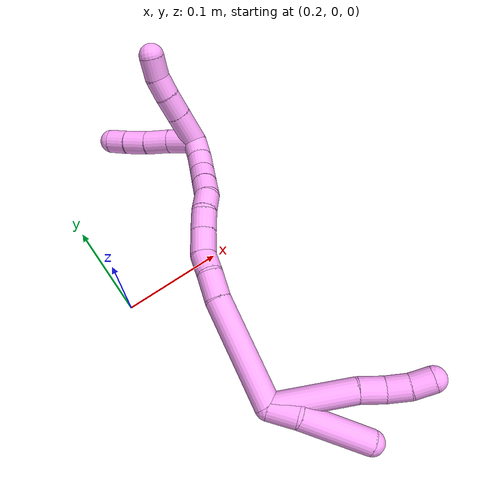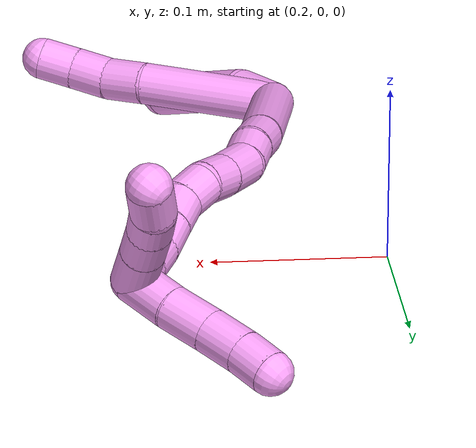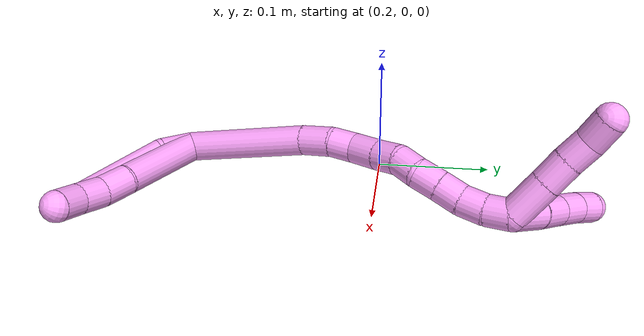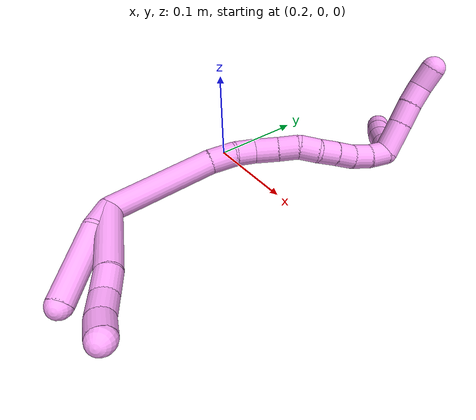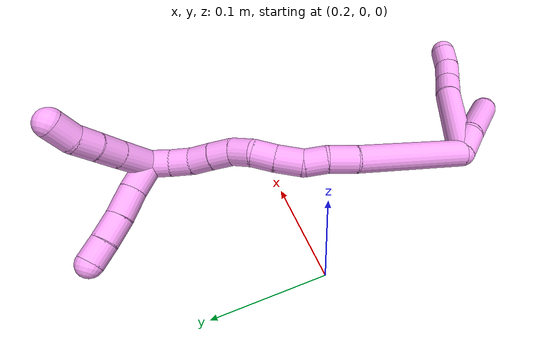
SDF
<sdf version="1.7">
 <world name="default">
  <model name="4">
   <static>0</static>
   <link name="4">
    <collision name="collision-cylinder-e_1_2_8">
     <pose>-0.01701 0.007553 -0.03589 -2.93416 -0.434267 2.25989</pose>
     <geometry><cylinder><radius>0.0125</radius><length>0.080858</length></cylinder></geometry>
     <surface>
      <friction><ode><mu>1.16</mu><mu2>1.16</mu2><slip1>0</slip1><slip2>0</slip2></ode></friction>
      <contact><ode><kp>1e+06</kp><kd>1</kd><max_vel>0</max_vel><min_depth>0.001</min_depth></ode></contact>
     </surface>
    </collision>
    <visual name="visual-cylinder-e_1_2_8">
     <pose>-0.01701 0.007553 -0.03589 -2.93416 -0.434267 2.25989</pose>
     <geometry><cylinder><radius>0.0125</radius><length>0.080858</length></cylinder></geometry>
     <material><ambient>1 0.65098 0.996078 1</ambient></material>
    </visual>
    <collision name="collision-cylinder-e_2_8_9">
     <pose>-0.039844 0.015535 -0.082773 -3.10262 -0.486855 2.98498</pose>
     <geometry><cylinder><radius>0.0125</radius><length>0.024895</length></cylinder></geometry>
     <surface>
      <friction><ode><mu>1.16</mu><mu2>1.16</mu2><slip1>0</slip1><slip2>0</slip2></ode></friction>
      <contact><ode><kp>1e+06</kp><kd>1</kd><max_vel>0</max_vel><min_depth>0.001</min_depth></ode></contact>
     </surface>
    </collision>
    <visual name="visual-cylinder-e_2_8_9">
     <pose>-0.039844 0.015535 -0.082773 -3.10262 -0.486855 2.98498</pose>
     <geometry><cylinder><radius>0.0125</radius><length>0.024895</length></cylinder></geometry>
     <material><ambient>1 0.65098 0.996078 1</ambient></material>
    </visual>
    <collision name="collision-cylinder-e_3_9_10">
     <pose>-0.049157 0.017312 -0.104506 -3.0167 -0.311801 2.38432</pose>
     <geometry><cylinder><radius>0.0125</radius><length>0.022745</length></cylinder></geometry>
     <surface>
      <friction><ode><mu>1.16</mu><mu2>1.16</mu2><slip1>0</slip1><slip2>0</slip2></ode></friction>
      <contact><ode><kp>1e+06</kp><kd>1</kd><max_vel>0</max_vel><min_depth>0.001</min_depth></ode></contact>
     </surface>
    </collision>
    <visual name="visual-cylinder-e_3_9_10">
     <pose>-0.049157 0.017312 -0.104506 -3.0167 -0.311801 2.38432</pose>
     <geometry><cylinder><radius>0.0125</radius><length>0.022745</length></cylinder></geometry>
     <material><ambient>1 0.65098 0.996078 1</ambient></material>
    </visual>
    <collision name="collision-cylinder-e_4_10_6">
     <pose>-0.055369 0.021981 -0.125102 -2.81664 -0.256133 1.33177</pose>
     <geometry><cylinder><radius>0.0125</radius><length>0.021502</length></cylinder></geometry>
     <surface>
      <friction><ode><mu>1.16</mu><mu2>1.16</mu2><slip1>0</slip1><slip2>0</slip2></ode></friction>
      <contact><ode><kp>1e+06</kp><kd>1</kd><max_vel>0</max_vel><min_depth>0.001</min_depth></ode></contact>
     </surface>
    </collision>
    <visual name="visual-cylinder-e_4_10_6">
     <pose>-0.055369 0.021981 -0.125102 -2.81664 -0.256133 1.33177</pose>
     <geometry><cylinder><radius>0.0125</radius><length>0.021502</length></cylinder></geometry>
     <material><ambient>1 0.65098 0.996078 1</ambient></material>
    </visual>
    <collision name="collision-cylinder-e_1_2_11">
     <pose>-0.00447 -0.003666 -0.01263 2.85912 -0.327659 -1.72094</pose>
     <geometry><cylinder><radius>0.0125</radius><length>0.027781</length></cylinder></geometry>
     <surface>
      <friction><ode><mu>1.16</mu><mu2>1.16</mu2><slip1>0</slip1><slip2>0</slip2></ode></friction>
      <contact><ode><kp>1e+06</kp><kd>1</kd><max_vel>0</max_vel><min_depth>0.001</min_depth></ode></contact>
     </surface>
    </collision>
    <visual name="visual-cylinder-e_1_2_11">
     <pose>-0.00447 -0.003666 -0.01263 2.85912 -0.327659 -1.72094</pose>
     <geometry><cylinder><radius>0.0125</radius><length>0.027781</length></cylinder></geometry>
     <material><ambient>1 0.65098 0.996078 1</ambient></material>
    </visual>
    <collision name="collision-cylinder-e_2_11_5">
     <pose>-0.030558 -0.018716 -0.051849 2.73703 -0.641837 -2.03598</pose>
     <geometry><cylinder><radius>0.0125</radius><length>0.072219</length></cylinder></geometry>
     <surface>
      <friction><ode><mu>1.16</mu><mu2>1.16</mu2><slip1>0</slip1><slip2>0</slip2></ode></friction>
      <contact><ode><kp>1e+06</kp><kd>1</kd><max_vel>0</max_vel><min_depth>0.001</min_depth></ode></contact>
     </surface>
    </collision>
    <visual name="visual-cylinder-e_2_11_5">
     <pose>-0.030558 -0.018716 -0.051849 2.73703 -0.641837 -2.03598</pose>
     <geometry><cylinder><radius>0.0125</radius><length>0.072219</length></cylinder></geometry>
     <material><ambient>1 0.65098 0.996078 1</ambient></material>
    </visual>
    <collision name="collision-cylinder-e_1_2_12">
     <pose>0.009197 0.047956 0.021332 -1.15226 0.173463 -0.112853</pose>
     <geometry><cylinder><radius>0.0125</radius><length>0.106572</length></cylinder></geometry>
     <surface>
      <friction><ode><mu>1.16</mu><mu2>1.16</mu2><slip1>0</slip1><slip2>0</slip2></ode></friction>
      <contact><ode><kp>1e+06</kp><kd>1</kd><max_vel>0</max_vel><min_depth>0.001</min_depth></ode></contact>
     </surface>
    </collision>
    <visual name="visual-cylinder-e_1_2_12">
     <pose>0.009197 0.047956 0.021332 -1.15226 0.173463 -0.112853</pose>
     <geometry><cylinder><radius>0.0125</radius><length>0.106572</length></cylinder></geometry>
     <material><ambient>1 0.65098 0.996078 1</ambient></material>
    </visual>
    <collision name="collision-cylinder-e_2_12_13">
     <pose>0.019141 0.108476 0.046868 -1.24785 0.056347 -0.040567</pose>
     <geometry><cylinder><radius>0.0125</radius><length>0.02654</length></cylinder></geometry>
     <surface>
      <friction><ode><mu>1.16</mu><mu2>1.16</mu2><slip1>0</slip1><slip2>0</slip2></ode></friction>
      <contact><ode><kp>1e+06</kp><kd>1</kd><max_vel>0</max_vel><min_depth>0.001</min_depth></ode></contact>
     </surface>
    </collision>
    <visual name="visual-cylinder-e_2_12_13">
     <pose>0.019141 0.108476 0.046868 -1.24785 0.056347 -0.040567</pose>
     <geometry><cylinder><radius>0.0125</radius><length>0.02654</length></cylinder></geometry>
     <material><ambient>1 0.65098 0.996078 1</ambient></material>
    </visual>
    <collision name="collision-cylinder-e_3_13_14">
     <pose>0.018582 0.130252 0.055372 -1.13415 -0.127748 0.081422</pose>
     <geometry><cylinder><radius>0.0125</radius><length>0.0205</length></cylinder></geometry>
     <surface>
      <friction><ode><mu>1.16</mu><mu2>1.16</mu2><slip1>0</slip1><slip2>0</slip2></ode></friction>
      <contact><ode><kp>1e+06</kp><kd>1</kd><max_vel>0</max_vel><min_depth>0.001</min_depth></ode></contact>
     </surface>
    </collision>
    <visual name="visual-cylinder-e_3_13_14">
     <pose>0.018582 0.130252 0.055372 -1.13415 -0.127748 0.081422</pose>
     <geometry><cylinder><radius>0.0125</radius><length>0.0205</length></cylinder></geometry>
     <material><ambient>1 0.65098 0.996078 1</ambient></material>
    </visual>
    <collision name="collision-cylinder-e_4_14_15">
     <pose>0.015588 0.151788 0.060879 -1.4731 -0.135536 0.122935</pose>
     <geometry><cylinder><radius>0.0125</radius><length>0.024994</length></cylinder></geometry>
     <surface>
      <friction><ode><mu>1.16</mu><mu2>1.16</mu2><slip1>0</slip1><slip2>0</slip2></ode></friction>
      <contact><ode><kp>1e+06</kp><kd>1</kd><max_vel>0</max_vel><min_depth>0.001</min_depth></ode></contact>
     </surface>
    </collision>
    <visual name="visual-cylinder-e_4_14_15">
     <pose>0.015588 0.151788 0.060879 -1.4731 -0.135536 0.122935</pose>
     <geometry><cylinder><radius>0.0125</radius><length>0.024994</length></cylinder></geometry>
     <material><ambient>1 0.65098 0.996078 1</ambient></material>
    </visual>
    <collision name="collision-cylinder-e_5_15_16">
     <pose>0.012961 0.174579 0.062411 -1.53989 -0.089376 0.086659</pose>
     <geometry><cylinder><radius>0.0125</radius><length>0.021029</length></cylinder></geometry>
     <surface>
      <friction><ode><mu>1.16</mu><mu2>1.16</mu2><slip1>0</slip1><slip2>0</slip2></ode></friction>
      <contact><ode><kp>1e+06</kp><kd>1</kd><max_vel>0</max_vel><min_depth>0.001</min_depth></ode></contact>
     </surface>
    </collision>
    <visual name="visual-cylinder-e_5_15_16">
     <pose>0.012961 0.174579 0.062411 -1.53989 -0.089376 0.086659</pose>
     <geometry><cylinder><radius>0.0125</radius><length>0.021029</length></cylinder></geometry>
     <material><ambient>1 0.65098 0.996078 1</ambient></material>
    </visual>
    <collision name="collision-cylinder-e_6_16_17">
     <pose>0.007944 0.194179 0.063629 -1.47316 -0.418264 0.380275</pose>
     <geometry><cylinder><radius>0.0125</radius><length>0.020084</length></cylinder></geometry>
     <surface>
      <friction><ode><mu>1.16</mu><mu2>1.16</mu2><slip1>0</slip1><slip2>0</slip2></ode></friction>
      <contact><ode><kp>1e+06</kp><kd>1</kd><max_vel>0</max_vel><min_depth>0.001</min_depth></ode></contact>
     </surface>
    </collision>
    <visual name="visual-cylinder-e_6_16_17">
     <pose>0.007944 0.194179 0.063629 -1.47316 -0.418264 0.380275</pose>
     <geometry><cylinder><radius>0.0125</radius><length>0.020084</length></cylinder></geometry>
     <material><ambient>1 0.65098 0.996078 1</ambient></material>
    </visual>
    <collision name="collision-cylinder-e_7_17_18">
     <pose>-4e-06 0.21188 0.068253 -1.16029 -0.392491 0.259123</pose>
     <geometry><cylinder><radius>0.0125</radius><length>0.020228</length></cylinder></geometry>
     <surface>
      <friction><ode><mu>1.16</mu><mu2>1.16</mu2><slip1>0</slip1><slip2>0</slip2></ode></friction>
      <contact><ode><kp>1e+06</kp><kd>1</kd><max_vel>0</max_vel><min_depth>0.001</min_depth></ode></contact>
     </surface>
    </collision>
    <visual name="visual-cylinder-e_7_17_18">
     <pose>-4e-06 0.21188 0.068253 -1.16029 -0.392491 0.259123</pose>
     <geometry><cylinder><radius>0.0125</radius><length>0.020228</length></cylinder></geometry>
     <material><ambient>1 0.65098 0.996078 1</ambient></material>
    </visual>
    <collision name="collision-cylinder-e_8_18_19">
     <pose>-0.008022 0.228744 0.07574 -1.14541 -0.427528 0.278137</pose>
     <geometry><cylinder><radius>0.0125</radius><length>0.020015</length></cylinder></geometry>
     <surface>
      <friction><ode><mu>1.16</mu><mu2>1.16</mu2><slip1>0</slip1><slip2>0</slip2></ode></friction>
      <contact><ode><kp>1e+06</kp><kd>1</kd><max_vel>0</max_vel><min_depth>0.001</min_depth></ode></contact>
     </surface>
    </collision>
    <visual name="visual-cylinder-e_8_18_19">
     <pose>-0.008022 0.228744 0.07574 -1.14541 -0.427528 0.278137</pose>
     <geometry><cylinder><radius>0.0125</radius><length>0.020015</length></cylinder></geometry>
     <material><ambient>1 0.65098 0.996078 1</ambient></material>
    </visual>
    <collision name="collision-cylinder-e_9_19_20">
     <pose>-0.014462 0.246266 0.082639 -1.2427 -0.230822 0.165615</pose>
     <geometry><cylinder><radius>0.0125</radius><length>0.020024</length></cylinder></geometry>
     <surface>
      <friction><ode><mu>1.16</mu><mu2>1.16</mu2><slip1>0</slip1><slip2>0</slip2></ode></friction>
      <contact><ode><kp>1e+06</kp><kd>1</kd><max_vel>0</max_vel><min_depth>0.001</min_depth></ode></contact>
     </surface>
    </collision>
    <visual name="visual-cylinder-e_9_19_20">
     <pose>-0.014462 0.246266 0.082639 -1.2427 -0.230822 0.165615</pose>
     <geometry><cylinder><radius>0.0125</radius><length>0.020024</length></cylinder></geometry>
     <material><ambient>1 0.65098 0.996078 1</ambient></material>
    </visual>
    <collision name="collision-cylinder-e_10_20_1">
     <pose>-0.017164 0.26494 0.089052 -1.23732 -0.041211 0.029339</pose>
     <geometry><cylinder><radius>0.0125</radius><length>0.020015</length></cylinder></geometry>
     <surface>
      <friction><ode><mu>1.16</mu><mu2>1.16</mu2><slip1>0</slip1><slip2>0</slip2></ode></friction>
      <contact><ode><kp>1e+06</kp><kd>1</kd><max_vel>0</max_vel><min_depth>0.001</min_depth></ode></contact>
     </surface>
    </collision>
    <visual name="visual-cylinder-e_10_20_1">
     <pose>-0.017164 0.26494 0.089052 -1.23732 -0.041211 0.029339</pose>
     <geometry><cylinder><radius>0.0125</radius><length>0.020015</length></cylinder></geometry>
     <material><ambient>1 0.65098 0.996078 1</ambient></material>
    </visual>
    <collision name="collision-cylinder-e_1_1_21">
     <pose>-0.015877 0.276403 0.106671 -0.139564 0.116786 -0.008172</pose>
     <geometry><cylinder><radius>0.0125</radius><length>0.029173</length></cylinder></geometry>
     <surface>
      <friction><ode><mu>1.16</mu><mu2>1.16</mu2><slip1>0</slip1><slip2>0</slip2></ode></friction>
      <contact><ode><kp>1e+06</kp><kd>1</kd><max_vel>0</max_vel><min_depth>0.001</min_depth></ode></contact>
     </surface>
    </collision>
    <visual name="visual-cylinder-e_1_1_21">
     <pose>-0.015877 0.276403 0.106671 -0.139564 0.116786 -0.008172</pose>
     <geometry><cylinder><radius>0.0125</radius><length>0.029173</length></cylinder></geometry>
     <material><ambient>1 0.65098 0.996078 1</ambient></material>
    </visual>
    <collision name="collision-cylinder-e_2_21_22">
     <pose>-0.012219 0.27893 0.134113 -0.038993 0.148347 -0.002898</pose>
     <geometry><cylinder><radius>0.0125</radius><length>0.026503</length></cylinder></geometry>
     <surface>
      <friction><ode><mu>1.16</mu><mu2>1.16</mu2><slip1>0</slip1><slip2>0</slip2></ode></friction>
      <contact><ode><kp>1e+06</kp><kd>1</kd><max_vel>0</max_vel><min_depth>0.001</min_depth></ode></contact>
     </surface>
    </collision>
    <visual name="visual-cylinder-e_2_21_22">
     <pose>-0.012219 0.27893 0.134113 -0.038993 0.148347 -0.002898</pose>
     <geometry><cylinder><radius>0.0125</radius><length>0.026503</length></cylinder></geometry>
     <material><ambient>1 0.65098 0.996078 1</ambient></material>
    </visual>
    <collision name="collision-cylinder-e_3_22_23">
     <pose>-0.008363 0.280961 0.15901 -0.128111 0.158125 -0.010164</pose>
     <geometry><cylinder><radius>0.0125</radius><length>0.024097</length></cylinder></geometry>
     <surface>
      <friction><ode><mu>1.16</mu><mu2>1.16</mu2><slip1>0</slip1><slip2>0</slip2></ode></friction>
      <contact><ode><kp>1e+06</kp><kd>1</kd><max_vel>0</max_vel><min_depth>0.001</min_depth></ode></contact>
     </surface>
    </collision>
    <visual name="visual-cylinder-e_3_22_23">
     <pose>-0.008363 0.280961 0.15901 -0.128111 0.158125 -0.010164</pose>
     <geometry><cylinder><radius>0.0125</radius><length>0.024097</length></cylinder></geometry>
     <material><ambient>1 0.65098 0.996078 1</ambient></material>
    </visual>
    <collision name="collision-cylinder-e_4_23_4">
     <pose>-0.005345 0.284344 0.180688 -0.186432 0.111025 -0.01039</pose>
     <geometry><cylinder><radius>0.0125</radius><length>0.020227</length></cylinder></geometry>
     <surface>
      <friction><ode><mu>1.16</mu><mu2>1.16</mu2><slip1>0</slip1><slip2>0</slip2></ode></friction>
      <contact><ode><kp>1e+06</kp><kd>1</kd><max_vel>0</max_vel><min_depth>0.001</min_depth></ode></contact>
     </surface>
    </collision>
    <visual name="visual-cylinder-e_4_23_4">
     <pose>-0.005345 0.284344 0.180688 -0.186432 0.111025 -0.01039</pose>
     <geometry><cylinder><radius>0.0125</radius><length>0.020227</length></cylinder></geometry>
     <material><ambient>1 0.65098 0.996078 1</ambient></material>
    </visual>
    <collision name="collision-cylinder-e_1_1_24">
     <pose>-0.004356 0.284648 0.095031 -1.31294 0.894509 -0.708006</pose>
     <geometry><cylinder><radius>0.0125</radius><length>0.033904</length></cylinder></geometry>
     <surface>
      <friction><ode><mu>1.16</mu><mu2>1.16</mu2><slip1>0</slip1><slip2>0</slip2></ode></friction>
      <contact><ode><kp>1e+06</kp><kd>1</kd><max_vel>0</max_vel><min_depth>0.001</min_depth></ode></contact>
     </surface>
    </collision>
    <visual name="visual-cylinder-e_1_1_24">
     <pose>-0.004356 0.284648 0.095031 -1.31294 0.894509 -0.708006</pose>
     <geometry><cylinder><radius>0.0125</radius><length>0.033904</length></cylinder></geometry>
     <material><ambient>1 0.65098 0.996078 1</ambient></material>
    </visual>
    <collision name="collision-cylinder-e_2_24_25">
     <pose>0.017987 0.301721 0.09938 -1.3341 0.915644 -0.740259</pose>
     <geometry><cylinder><radius>0.0125</radius><length>0.023008</length></cylinder></geometry>
     <surface>
      <friction><ode><mu>1.16</mu><mu2>1.16</mu2><slip1>0</slip1><slip2>0</slip2></ode></friction>
      <contact><ode><kp>1e+06</kp><kd>1</kd><max_vel>0</max_vel><min_depth>0.001</min_depth></ode></contact>
     </surface>
    </collision>
    <visual name="visual-cylinder-e_2_24_25">
     <pose>0.017987 0.301721 0.09938 -1.3341 0.915644 -0.740259</pose>
     <geometry><cylinder><radius>0.0125</radius><length>0.023008</length></cylinder></geometry>
     <material><ambient>1 0.65098 0.996078 1</ambient></material>
    </visual>
    <collision name="collision-cylinder-e_3_25_26">
     <pose>0.034855 0.315372 0.10245 -1.36516 0.836953 -0.693857</pose>
     <geometry><cylinder><radius>0.0125</radius><length>0.020859</length></cylinder></geometry>
     <surface>
      <friction><ode><mu>1.16</mu><mu2>1.16</mu2><slip1>0</slip1><slip2>0</slip2></ode></friction>
      <contact><ode><kp>1e+06</kp><kd>1</kd><max_vel>0</max_vel><min_depth>0.001</min_depth></ode></contact>
     </surface>
    </collision>
    <visual name="visual-cylinder-e_3_25_26">
     <pose>0.034855 0.315372 0.10245 -1.36516 0.836953 -0.693857</pose>
     <geometry><cylinder><radius>0.0125</radius><length>0.020859</length></cylinder></geometry>
     <material><ambient>1 0.65098 0.996078 1</ambient></material>
    </visual>
    <collision name="collision-cylinder-e_4_26_3">
     <pose>0.050841 0.329525 0.102426 -1.76649 0.835274 -0.990796</pose>
     <geometry><cylinder><radius>0.0125</radius><length>0.022229</length></cylinder></geometry>
     <surface>
      <friction><ode><mu>1.16</mu><mu2>1.16</mu2><slip1>0</slip1><slip2>0</slip2></ode></friction>
      <contact><ode><kp>1e+06</kp><kd>1</kd><max_vel>0</max_vel><min_depth>0.001</min_depth></ode></contact>
     </surface>
    </collision>
    <visual name="visual-cylinder-e_4_26_3">
     <pose>0.050841 0.329525 0.102426 -1.76649 0.835274 -0.990796</pose>
     <geometry><cylinder><radius>0.0125</radius><length>0.022229</length></cylinder></geometry>
     <material><ambient>1 0.65098 0.996078 1</ambient></material>
    </visual>
    <collision name="collision-sphere-3">
     <pose>0.059082 0.33684 0.100976 0 -0 0</pose>
     <geometry><sphere><radius>0.0125</radius></sphere></geometry>
     <surface>
      <friction><ode><mu>1.16</mu><mu2>1.16</mu2><slip1>0</slip1><slip2>0</slip2></ode></friction>
      <contact><ode><kp>1e+06</kp><kd>1</kd><max_vel>0</max_vel><min_depth>0.001</min_depth></ode></contact>
     </surface>
    </collision>
    <visual name="visual-sphere-3">
     <pose>0.059082 0.33684 0.100976 0 -0 0</pose>
     <geometry><sphere><radius>0.0125</radius></sphere></geometry>
     <material><ambient>1 0.65098 0.996078 1</ambient></material>
    </visual>
    <collision name="collision-sphere-26">
     <pose>0.0426 0.32221 0.103876 0 -0 0</pose>
     <geometry><sphere><radius>0.0125</radius></sphere></geometry>
     <surface>
      <friction><ode><mu>1.16</mu><mu2>1.16</mu2><slip1>0</slip1><slip2>0</slip2></ode></friction>
      <contact><ode><kp>1e+06</kp><kd>1</kd><max_vel>0</max_vel><min_depth>0.001</min_depth></ode></contact>
     </surface>
    </collision>
    <visual name="visual-sphere-26">
     <pose>0.0426 0.32221 0.103876 0 -0 0</pose>
     <geometry><sphere><radius>0.0125</radius></sphere></geometry>
     <material><ambient>1 0.65098 0.996078 1</ambient></material>
    </visual>
    <collision name="collision-sphere-25">
     <pose>0.02711 0.308535 0.101024 0 -0 0</pose>
     <geometry><sphere><radius>0.0125</radius></sphere></geometry>
     <surface>
      <friction><ode><mu>1.16</mu><mu2>1.16</mu2><slip1>0</slip1><slip2>0</slip2></ode></friction>
      <contact><ode><kp>1e+06</kp><kd>1</kd><max_vel>0</max_vel><min_depth>0.001</min_depth></ode></contact>
     </surface>
    </collision>
    <visual name="visual-sphere-25">
     <pose>0.02711 0.308535 0.101024 0 -0 0</pose>
     <geometry><sphere><radius>0.0125</radius></sphere></geometry>
     <material><ambient>1 0.65098 0.996078 1</ambient></material>
    </visual>
    <collision name="collision-sphere-24">
     <pose>0.008865 0.294907 0.097737 0 -0 0</pose>
     <geometry><sphere><radius>0.0125</radius></sphere></geometry>
     <surface>
      <friction><ode><mu>1.16</mu><mu2>1.16</mu2><slip1>0</slip1><slip2>0</slip2></ode></friction>
      <contact><ode><kp>1e+06</kp><kd>1</kd><max_vel>0</max_vel><min_depth>0.001</min_depth></ode></contact>
     </surface>
    </collision>
    <visual name="visual-sphere-24">
     <pose>0.008865 0.294907 0.097737 0 -0 0</pose>
     <geometry><sphere><radius>0.0125</radius></sphere></geometry>
     <material><ambient>1 0.65098 0.996078 1</ambient></material>
    </visual>
    <collision name="collision-sphere-4">
     <pose>-0.004225 0.286207 0.190565 0 -0 0</pose>
     <geometry><sphere><radius>0.0125</radius></sphere></geometry>
     <surface>
      <friction><ode><mu>1.16</mu><mu2>1.16</mu2><slip1>0</slip1><slip2>0</slip2></ode></friction>
      <contact><ode><kp>1e+06</kp><kd>1</kd><max_vel>0</max_vel><min_depth>0.001</min_depth></ode></contact>
     </surface>
    </collision>
    <visual name="visual-sphere-4">
     <pose>-0.004225 0.286207 0.190565 0 -0 0</pose>
     <geometry><sphere><radius>0.0125</radius></sphere></geometry>
     <material><ambient>1 0.65098 0.996078 1</ambient></material>
    </visual>
    <collision name="collision-sphere-23">
     <pose>-0.006466 0.282481 0.170811 0 -0 0</pose>
     <geometry><sphere><radius>0.0125</radius></sphere></geometry>
     <surface>
      <friction><ode><mu>1.16</mu><mu2>1.16</mu2><slip1>0</slip1><slip2>0</slip2></ode></friction>
      <contact><ode><kp>1e+06</kp><kd>1</kd><max_vel>0</max_vel><min_depth>0.001</min_depth></ode></contact>
     </surface>
    </collision>
    <visual name="visual-sphere-23">
     <pose>-0.006466 0.282481 0.170811 0 -0 0</pose>
     <geometry><sphere><radius>0.0125</radius></sphere></geometry>
     <material><ambient>1 0.65098 0.996078 1</ambient></material>
    </visual>
    <collision name="collision-sphere-22">
     <pose>-0.01026 0.279441 0.147209 0 -0 0</pose>
     <geometry><sphere><radius>0.0125</radius></sphere></geometry>
     <surface>
      <friction><ode><mu>1.16</mu><mu2>1.16</mu2><slip1>0</slip1><slip2>0</slip2></ode></friction>
      <contact><ode><kp>1e+06</kp><kd>1</kd><max_vel>0</max_vel><min_depth>0.001</min_depth></ode></contact>
     </surface>
    </collision>
    <visual name="visual-sphere-22">
     <pose>-0.01026 0.279441 0.147209 0 -0 0</pose>
     <geometry><sphere><radius>0.0125</radius></sphere></geometry>
     <material><ambient>1 0.65098 0.996078 1</ambient></material>
    </visual>
    <collision name="collision-sphere-21">
     <pose>-0.014177 0.278419 0.121017 0 -0 0</pose>
     <geometry><sphere><radius>0.0125</radius></sphere></geometry>
     <surface>
      <friction><ode><mu>1.16</mu><mu2>1.16</mu2><slip1>0</slip1><slip2>0</slip2></ode></friction>
      <contact><ode><kp>1e+06</kp><kd>1</kd><max_vel>0</max_vel><min_depth>0.001</min_depth></ode></contact>
     </surface>
    </collision>
    <visual name="visual-sphere-21">
     <pose>-0.014177 0.278419 0.121017 0 -0 0</pose>
     <geometry><sphere><radius>0.0125</radius></sphere></geometry>
     <material><ambient>1 0.65098 0.996078 1</ambient></material>
    </visual>
    <collision name="collision-sphere-1">
     <pose>-0.017577 0.274388 0.092325 0 -0 0</pose>
     <geometry><sphere><radius>0.0125</radius></sphere></geometry>
     <surface>
      <friction><ode><mu>1.16</mu><mu2>1.16</mu2><slip1>0</slip1><slip2>0</slip2></ode></friction>
      <contact><ode><kp>1e+06</kp><kd>1</kd><max_vel>0</max_vel><min_depth>0.001</min_depth></ode></contact>
     </surface>
    </collision>
    <visual name="visual-sphere-1">
     <pose>-0.017577 0.274388 0.092325 0 -0 0</pose>
     <geometry><sphere><radius>0.0125</radius></sphere></geometry>
     <material><ambient>1 0.65098 0.996078 1</ambient></material>
    </visual>
    <collision name="collision-sphere-11">
     <pose>-0.008941 -0.007332 -0.025261 0 -0 0</pose>
     <geometry><sphere><radius>0.0125</radius></sphere></geometry>
     <surface>
      <friction><ode><mu>1.16</mu><mu2>1.16</mu2><slip1>0</slip1><slip2>0</slip2></ode></friction>
      <contact><ode><kp>1e+06</kp><kd>1</kd><max_vel>0</max_vel><min_depth>0.001</min_depth></ode></contact>
     </surface>
    </collision>
    <visual name="visual-sphere-11">
     <pose>-0.008941 -0.007332 -0.025261 0 -0 0</pose>
     <geometry><sphere><radius>0.0125</radius></sphere></geometry>
     <material><ambient>1 0.65098 0.996078 1</ambient></material>
    </visual>
    <collision name="collision-sphere-6">
     <pose>-0.058093 0.025301 -0.134958 0 -0 0</pose>
     <geometry><sphere><radius>0.0125</radius></sphere></geometry>
     <surface>
      <friction><ode><mu>1.16</mu><mu2>1.16</mu2><slip1>0</slip1><slip2>0</slip2></ode></friction>
      <contact><ode><kp>1e+06</kp><kd>1</kd><max_vel>0</max_vel><min_depth>0.001</min_depth></ode></contact>
     </surface>
    </collision>
    <visual name="visual-sphere-6">
     <pose>-0.058093 0.025301 -0.134958 0 -0 0</pose>
     <geometry><sphere><radius>0.0125</radius></sphere></geometry>
     <material><ambient>1 0.65098 0.996078 1</ambient></material>
    </visual>
    <collision name="collision-sphere-10">
     <pose>-0.052645 0.018661 -0.115246 0 -0 0</pose>
     <geometry><sphere><radius>0.0125</radius></sphere></geometry>
     <surface>
      <friction><ode><mu>1.16</mu><mu2>1.16</mu2><slip1>0</slip1><slip2>0</slip2></ode></friction>
      <contact><ode><kp>1e+06</kp><kd>1</kd><max_vel>0</max_vel><min_depth>0.001</min_depth></ode></contact>
     </surface>
    </collision>
    <visual name="visual-sphere-10">
     <pose>-0.052645 0.018661 -0.115246 0 -0 0</pose>
     <geometry><sphere><radius>0.0125</radius></sphere></geometry>
     <material><ambient>1 0.65098 0.996078 1</ambient></material>
    </visual>
    <collision name="collision-sphere-9">
     <pose>-0.045668 0.015964 -0.093766 0 -0 0</pose>
     <geometry><sphere><radius>0.0125</radius></sphere></geometry>
     <surface>
      <friction><ode><mu>1.16</mu><mu2>1.16</mu2><slip1>0</slip1><slip2>0</slip2></ode></friction>
      <contact><ode><kp>1e+06</kp><kd>1</kd><max_vel>0</max_vel><min_depth>0.001</min_depth></ode></contact>
     </surface>
    </collision>
    <visual name="visual-sphere-9">
     <pose>-0.045668 0.015964 -0.093766 0 -0 0</pose>
     <geometry><sphere><radius>0.0125</radius></sphere></geometry>
     <material><ambient>1 0.65098 0.996078 1</ambient></material>
    </visual>
    <collision name="collision-sphere-2">
     <geometry><sphere><radius>0.0125</radius></sphere></geometry>
     <surface>
      <friction><ode><mu>1.16</mu><mu2>1.16</mu2><slip1>0</slip1><slip2>0</slip2></ode></friction>
      <contact><ode><kp>1e+06</kp><kd>1</kd><max_vel>0</max_vel><min_depth>0.001</min_depth></ode></contact>
     </surface>
    </collision>
    <visual name="visual-sphere-2">
     <geometry><sphere><radius>0.0125</radius></sphere></geometry>
     <material><ambient>1 0.65098 0.996078 1</ambient></material>
    </visual>
    <collision name="collision-sphere-19">
     <pose>-0.012171 0.237039 0.079498 0 -0 0</pose>
     <geometry><sphere><radius>0.0125</radius></sphere></geometry>
     <surface>
      <friction><ode><mu>1.16</mu><mu2>1.16</mu2><slip1>0</slip1><slip2>0</slip2></ode></friction>
      <contact><ode><kp>1e+06</kp><kd>1</kd><max_vel>0</max_vel><min_depth>0.001</min_depth></ode></contact>
     </surface>
    </collision>
    <visual name="visual-sphere-19">
     <pose>-0.012171 0.237039 0.079498 0 -0 0</pose>
     <geometry><sphere><radius>0.0125</radius></sphere></geometry>
     <material><ambient>1 0.65098 0.996078 1</ambient></material>
    </visual>
    <collision name="collision-sphere-8">
     <pose>-0.034021 0.015107 -0.07178 0 -0 0</pose>
     <geometry><sphere><radius>0.0125</radius></sphere></geometry>
     <surface>
      <friction><ode><mu>1.16</mu><mu2>1.16</mu2><slip1>0</slip1><slip2>0</slip2></ode></friction>
      <contact><ode><kp>1e+06</kp><kd>1</kd><max_vel>0</max_vel><min_depth>0.001</min_depth></ode></contact>
     </surface>
    </collision>
    <visual name="visual-sphere-8">
     <pose>-0.034021 0.015107 -0.07178 0 -0 0</pose>
     <geometry><sphere><radius>0.0125</radius></sphere></geometry>
     <material><ambient>1 0.65098 0.996078 1</ambient></material>
    </visual>
    <collision name="collision-sphere-5">
     <pose>-0.052176 -0.030101 -0.078438 0 -0 0</pose>
     <geometry><sphere><radius>0.0125</radius></sphere></geometry>
     <surface>
      <friction><ode><mu>1.16</mu><mu2>1.16</mu2><slip1>0</slip1><slip2>0</slip2></ode></friction>
      <contact><ode><kp>1e+06</kp><kd>1</kd><max_vel>0</max_vel><min_depth>0.001</min_depth></ode></contact>
     </surface>
    </collision>
    <visual name="visual-sphere-5">
     <pose>-0.052176 -0.030101 -0.078438 0 -0 0</pose>
     <geometry><sphere><radius>0.0125</radius></sphere></geometry>
     <material><ambient>1 0.65098 0.996078 1</ambient></material>
    </visual>
    <collision name="collision-sphere-12">
     <pose>0.018394 0.095911 0.042663 0 -0 0</pose>
     <geometry><sphere><radius>0.0125</radius></sphere></geometry>
     <surface>
      <friction><ode><mu>1.16</mu><mu2>1.16</mu2><slip1>0</slip1><slip2>0</slip2></ode></friction>
      <contact><ode><kp>1e+06</kp><kd>1</kd><max_vel>0</max_vel><min_depth>0.001</min_depth></ode></contact>
     </surface>
    </collision>
    <visual name="visual-sphere-12">
     <pose>0.018394 0.095911 0.042663 0 -0 0</pose>
     <geometry><sphere><radius>0.0125</radius></sphere></geometry>
     <material><ambient>1 0.65098 0.996078 1</ambient></material>
    </visual>
    <collision name="collision-sphere-13">
     <pose>0.019888 0.12104 0.051073 0 -0 0</pose>
     <geometry><sphere><radius>0.0125</radius></sphere></geometry>
     <surface>
      <friction><ode><mu>1.16</mu><mu2>1.16</mu2><slip1>0</slip1><slip2>0</slip2></ode></friction>
      <contact><ode><kp>1e+06</kp><kd>1</kd><max_vel>0</max_vel><min_depth>0.001</min_depth></ode></contact>
     </surface>
    </collision>
    <visual name="visual-sphere-13">
     <pose>0.019888 0.12104 0.051073 0 -0 0</pose>
     <geometry><sphere><radius>0.0125</radius></sphere></geometry>
     <material><ambient>1 0.65098 0.996078 1</ambient></material>
    </visual>
    <collision name="collision-sphere-14">
     <pose>0.017277 0.139465 0.059671 0 -0 0</pose>
     <geometry><sphere><radius>0.0125</radius></sphere></geometry>
     <surface>
      <friction><ode><mu>1.16</mu><mu2>1.16</mu2><slip1>0</slip1><slip2>0</slip2></ode></friction>
      <contact><ode><kp>1e+06</kp><kd>1</kd><max_vel>0</max_vel><min_depth>0.001</min_depth></ode></contact>
     </surface>
    </collision>
    <visual name="visual-sphere-14">
     <pose>0.017277 0.139465 0.059671 0 -0 0</pose>
     <geometry><sphere><radius>0.0125</radius></sphere></geometry>
     <material><ambient>1 0.65098 0.996078 1</ambient></material>
    </visual>
    <collision name="collision-sphere-15">
     <pose>0.013899 0.164111 0.062087 0 -0 0</pose>
     <geometry><sphere><radius>0.0125</radius></sphere></geometry>
     <surface>
      <friction><ode><mu>1.16</mu><mu2>1.16</mu2><slip1>0</slip1><slip2>0</slip2></ode></friction>
      <contact><ode><kp>1e+06</kp><kd>1</kd><max_vel>0</max_vel><min_depth>0.001</min_depth></ode></contact>
     </surface>
    </collision>
    <visual name="visual-sphere-15">
     <pose>0.013899 0.164111 0.062087 0 -0 0</pose>
     <geometry><sphere><radius>0.0125</radius></sphere></geometry>
     <material><ambient>1 0.65098 0.996078 1</ambient></material>
    </visual>
    <collision name="collision-sphere-16">
     <pose>0.012022 0.185046 0.062734 0 -0 0</pose>
     <geometry><sphere><radius>0.0125</radius></sphere></geometry>
     <surface>
      <friction><ode><mu>1.16</mu><mu2>1.16</mu2><slip1>0</slip1><slip2>0</slip2></ode></friction>
      <contact><ode><kp>1e+06</kp><kd>1</kd><max_vel>0</max_vel><min_depth>0.001</min_depth></ode></contact>
     </surface>
    </collision>
    <visual name="visual-sphere-16">
     <pose>0.012022 0.185046 0.062734 0 -0 0</pose>
     <geometry><sphere><radius>0.0125</radius></sphere></geometry>
     <material><ambient>1 0.65098 0.996078 1</ambient></material>
    </visual>
    <collision name="collision-sphere-17">
     <pose>0.003865 0.203312 0.064523 0 -0 0</pose>
     <geometry><sphere><radius>0.0125</radius></sphere></geometry>
     <surface>
      <friction><ode><mu>1.16</mu><mu2>1.16</mu2><slip1>0</slip1><slip2>0</slip2></ode></friction>
      <contact><ode><kp>1e+06</kp><kd>1</kd><max_vel>0</max_vel><min_depth>0.001</min_depth></ode></contact>
     </surface>
    </collision>
    <visual name="visual-sphere-17">
     <pose>0.003865 0.203312 0.064523 0 -0 0</pose>
     <geometry><sphere><radius>0.0125</radius></sphere></geometry>
     <material><ambient>1 0.65098 0.996078 1</ambient></material>
    </visual>
    <collision name="collision-sphere-18">
     <pose>-0.003873 0.220449 0.071982 0 -0 0</pose>
     <geometry><sphere><radius>0.0125</radius></sphere></geometry>
     <surface>
      <friction><ode><mu>1.16</mu><mu2>1.16</mu2><slip1>0</slip1><slip2>0</slip2></ode></friction>
      <contact><ode><kp>1e+06</kp><kd>1</kd><max_vel>0</max_vel><min_depth>0.001</min_depth></ode></contact>
     </surface>
    </collision>
    <visual name="visual-sphere-18">
     <pose>-0.003873 0.220449 0.071982 0 -0 0</pose>
     <geometry><sphere><radius>0.0125</radius></sphere></geometry>
     <material><ambient>1 0.65098 0.996078 1</ambient></material>
    </visual>
    <collision name="collision-sphere-20">
     <pose>-0.016752 0.255492 0.085779 0 -0 0</pose>
     <geometry><sphere><radius>0.0125</radius></sphere></geometry>
     <surface>
      <friction><ode><mu>1.16</mu><mu2>1.16</mu2><slip1>0</slip1><slip2>0</slip2></ode></friction>
      <contact><ode><kp>1e+06</kp><kd>1</kd><max_vel>0</max_vel><min_depth>0.001</min_depth></ode></contact>
     </surface>
    </collision>
    <visual name="visual-sphere-20">
     <pose>-0.016752 0.255492 0.085779 0 -0 0</pose>
     <geometry><sphere><radius>0.0125</radius></sphere></geometry>
     <material><ambient>1 0.65098 0.996078 1</ambient></material>
    </visual>
    <inertial>
     <pose>-0.005444 0.133343 0.033398 0 -0 0</pose>
     <mass>0.75</mass>
     <inertia><ixx>8e-05</ixx><ixy>0</ixy><ixz>0</ixz><iyy>0.000144</iyy><iyz>0</iyz><izz>-9.6e-05</izz></inertia>
    </inertial>
   </link>
   <pose>0.249244 -0.163958 0.032578 2.66529 -1.09927 2.94921</pose>
  </model>
 </world>
</sdf>
